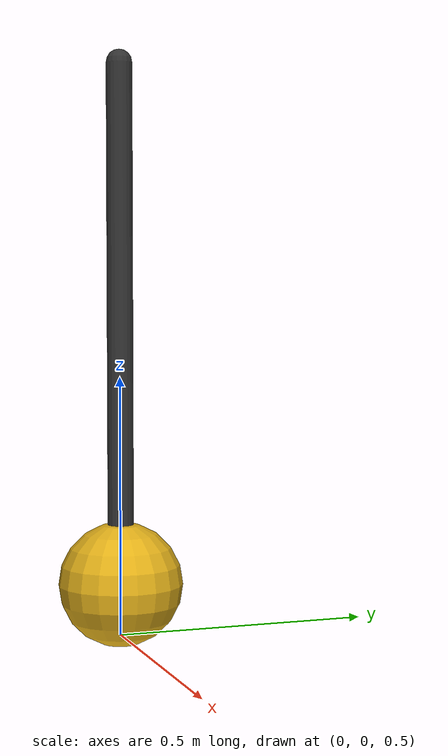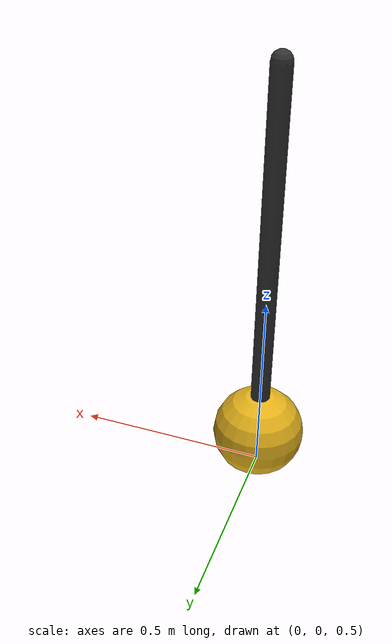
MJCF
<mujoco model="simple_pendulum">
  <option timestep="0.04" gravity="0 0 -9.81"/>
  <visual><global offwidth="320" offheight="240"/></visual>
  <worldbody>
    <light pos="0 -4 5"/>
    <camera name="track" pos="0 -5 2.5" xyaxes="1 0 0 0 0.45 0.89"/>
    <body name="pendulum" pos="0 0 1.6">
      <joint name="hinge" type="hinge" axis="0 1 0" damping="0.02"/>
      <geom type="capsule" fromto="0 0 0 0 0 -1" size="0.025" mass="0.1" rgba="0.2 0.2 0.2 1"/>
      <geom name="bob" type="sphere" pos="0 0 -1" size="0.12" mass="1" rgba="0.9 0.7 0.1 1"/>
    </body>
  </worldbody>
  <actuator><motor name="torque" joint="hinge" gear="1"/></actuator>
</mujoco>
